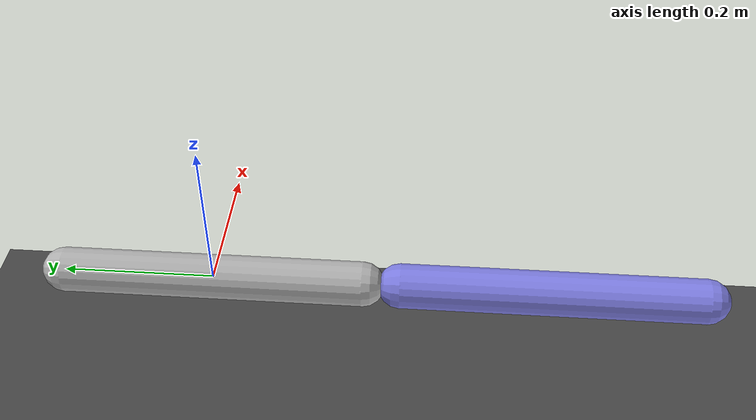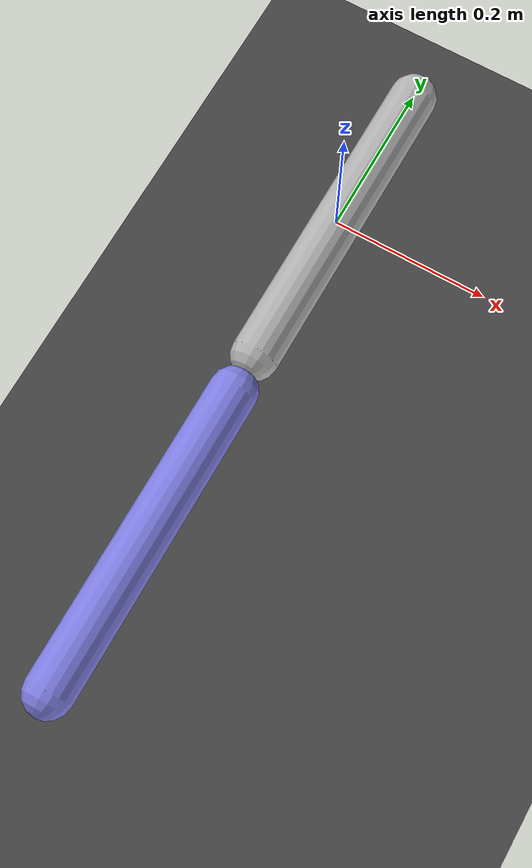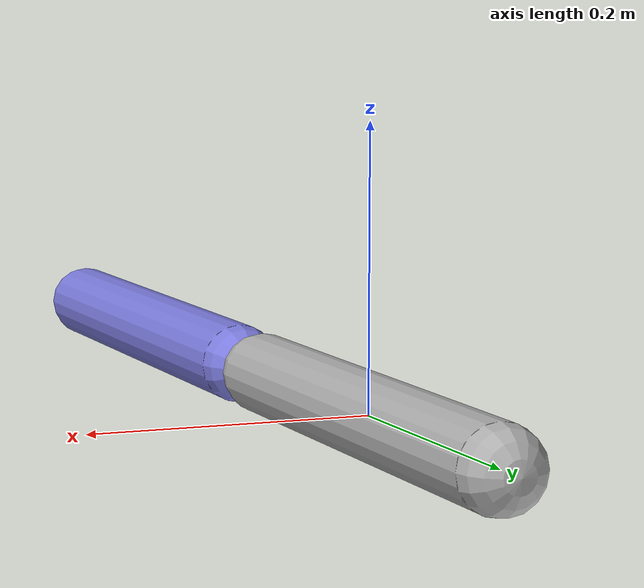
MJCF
<?xml version="1.0"?>
<mujoco model="pdff_demo">
  <compiler angle="degree"/>
  <option timestep="0.002" gravity="0 0 -0" integrator="implicitfast">
    <flag contact="disable" limit="disable"/>
  </option>

  <extension>
    <plugin plugin="mujoco.ctrl.pdff">
      <instance name="hip_pdff">
        <config key="kp" value="10"/>
        <config key="kd" value="1"/>
        <!-- 可省略, 默认把输出写进 *_tau 通道 -->
        <config key="target" value="hip_tau"/>
      </instance>
    </plugin>

    <plugin plugin="sensor_read_publish">
      <instance name="ins">
        <!-- 输出到标准输出（默认） -->
        <!-- 或者输出到文件，指定路径 -->
        <config key="mode" value="file"/>
         <config key="file" value="inspector.log"/>
        <!-- 输出频率（Hz） -->
        <config key="rate" value="10"/>
      </instance>
    </plugin>
  </extension>

<asset>
    <texture type="skybox" builtin="gradient" rgb1="0.6 0.6 0.6" rgb2="0 0 0" width="512" height="512"/>

    <texture name="texplane" type="2d" builtin="checker" rgb1=".25 .25 .25" rgb2=".3 .3 .3" width="512" height="512" mark="cross" markrgb=".8 .8 .8"/>

    <material name="matplane" reflectance="0.3" texture="texplane" texrepeat="1 1" texuniform="true"/>
  </asset>

  <worldbody>
    <geom name="floor" pos="0 0 -0.5" size="0 0 1" type="plane" material="matplane"/>

    <light directional="true" diffuse=".8 .8 .8" specular=".2 .2 .2" pos="0 0 5" dir="0 0 -1"/>

    <!-- 两刚体，通过一个转动关节连接 -->
    <body name="body1" pos="0 0 0" euler="90 0 0">
      <geom type="capsule" size="0.03 0.2" rgba=".7 .7 .7 1"/>
      <body name="body2" pos="0 0 0.45">
        <joint name="hip" type="hinge" axis="0 1 0" range="-180 180" pos="0 0 -0.225"/>
        <geom type="capsule" size="0.03 0.2" rgba=".5 .5 .9 1"/>
      </body>
    </body>
  </worldbody>

  <actuator>
    <!-- 同一实例，三个执行器，名字后缀决定通道角色 -->
    <plugin plugin="mujoco.ctrl.pdff" instance="hip_pdff" joint="hip" name="hip_qref" ctrllimited="true" ctrlrange="-3.1416 3.1416"/>
    <plugin plugin="mujoco.ctrl.pdff" instance="hip_pdff" joint="hip" name="hip_qdref" ctrllimited="true" ctrlrange="-2 2"/>
    <plugin plugin="mujoco.ctrl.pdff" instance="hip_pdff" joint="hip" name="hip_tau" ctrllimited="true" ctrlrange="-50 50"/>
  </actuator>
</mujoco>
